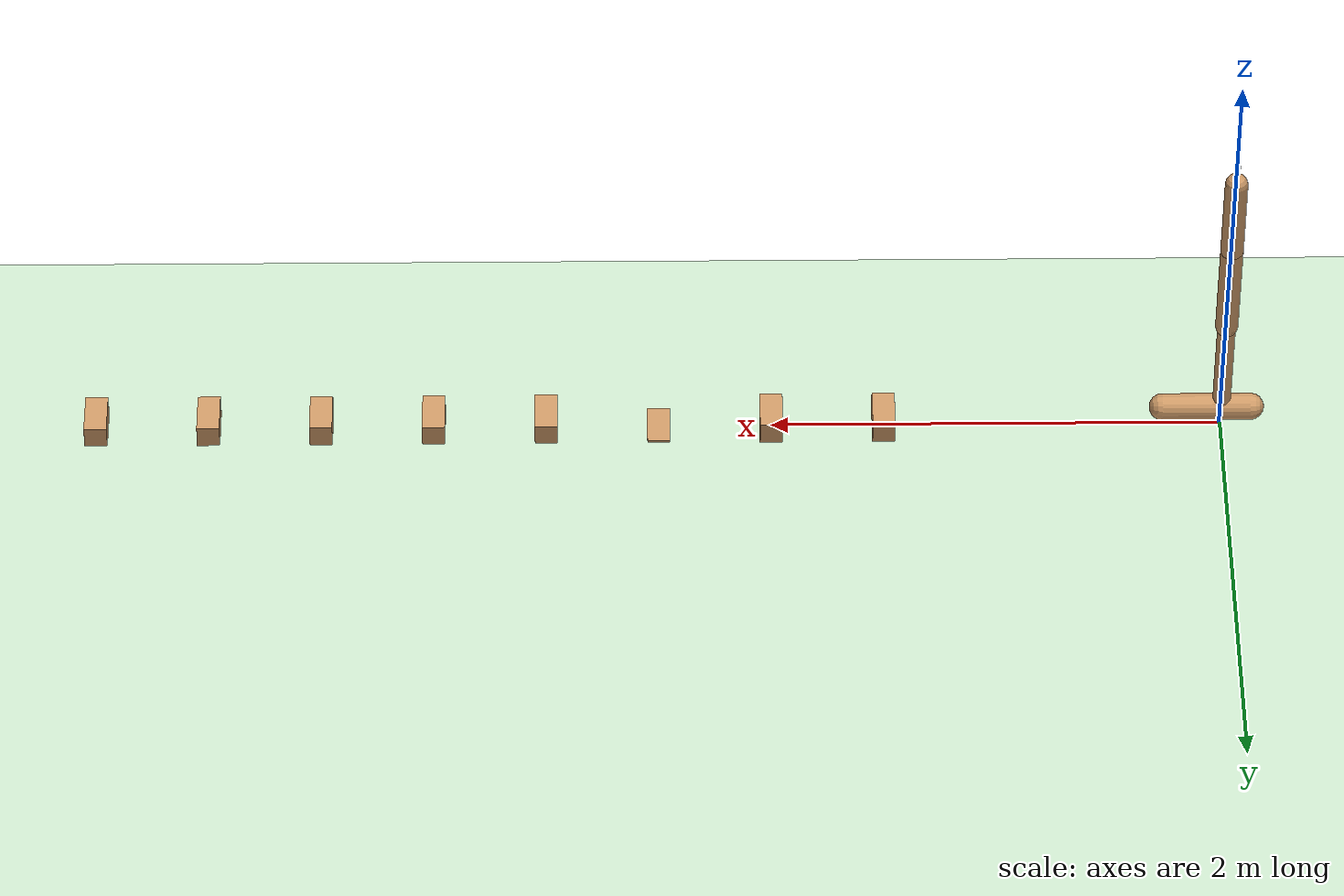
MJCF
<mujoco model="hopper">
  <compiler angle="degree" coordinate="global" inertiafromgeom="true"/>
  <default>
    <joint armature="1" damping="1" limited="true"/>
    <geom conaffinity="1" condim="1" contype="1" margin="0.001" material="geom" rgba="0.8 0.6 .4 1" solimp=".8 .8 .01" solref=".02 1"/>
    <motor ctrllimited="true" ctrlrange="-.4 .4"/>
  </default>
  <option integrator="RK4" timestep="0.002"/>
  <visual>
    <map znear="0.02"/>
  </visual>
  <worldbody>
    <light cutoff="100" diffuse="1 1 1" dir="-0 0 -1.3" directional="true" exponent="1" pos="0 0 1.3" specular=".1 .1 .1"/>
    <geom conaffinity="1" condim="3" name="floor" pos="0 0 0" rgba="0.8 0.9 0.8 1" size="20 20 .125" type="plane" material="MatPlane"/>
			<body name="obsticle_1" pos="2.5 0 0" euler = "0 0 0">
        <geom name="obsticle_1" pos="2.5 0 0" size="0.05 0.1 0.01" type="box"/>
			</body>
			<body name="obsticle_2" pos="3 0 0" euler = "0 0 0">
        <geom name="obsticle_2" pos="3 0 0" size="0.05 0.1 0.1" type="box"/>
			</body>
			<body name="obsticle_3" pos="3.5 0 0" euler = "0 0 0">
        <geom name="obsticle_3" pos="3.5 0 0" size="0.05 0.1 0.1" type="box"/>
			</body>
			<body name="obsticle_4" pos="4 0 0" euler = "0 0 0">
        <geom name="obsticle_4" pos="4 0 0" size="0.05 0.1 0.1" type="box"/>
			</body>
			<body name="obsticle_5" pos="4.5 0 0" euler = "0 0 0">
        <geom name="obsticle_5" pos="4.5 0 0" size="0.05 0.1 0.1" type="box"/>
			</body>
			<body name="obsticle_6" pos="5 0 0" euler = "0 0 0">
        <geom name="obsticle_6" pos="5 0 0" size="0.05 0.1 0.1" type="box"/>
			</body>
			<body name="obsticle_7" pos="1.5 0 0" euler = "0 0 0">
        <geom name="obsticle_7" pos="1.5 0 0" size="0.05 0.1 0.1" type="box"/>
			</body>
			<body name="obsticle_8" pos="2 0 0" euler = "0 0 0">
        <geom name="obsticle_8" pos="2 0 0" size="0.05 0.1 0.1" type="box"/>
			</body>

    <body name="torso" pos="0 0 1.25">
				<site name="range_site_1" pos="0 0 1.55" size="0.01 0.01 0.01" euler="0 110 0" type="cylinder"/>
				<site name="range_site_2" pos="0 0 1.55" size="0.01 0.01 0.01" euler="0 115 0" type="cylinder"/>
				<site name="range_site_3" pos="0 0 1.55" size="0.01 0.01 0.01" euler="0 120 0" type="cylinder"/>
				<site name="range_site_4" pos="0 0 1.55" size="0.01 0.01 0.01" euler="0 125 0" type="cylinder"/>
				<site name="range_site_5" pos="0 0 1.55" size="0.01 0.01 0.01" euler="0 130 0" type="cylinder"/>
				<site name="range_site_6" pos="0 0 1.55" size="0.01 0.01 0.01" euler="0 135 0" type="cylinder"/>
				<site name="range_site_7" pos="0 0 1.55" size="0.01 0.01 0.01" euler="0 140 0" type="cylinder"/>
				<site name="range_site_8" pos="0 0 1.55" size="0.01 0.01 0.01" euler="0 145 0" type="cylinder"/>
				<site name="range_site_9" pos="0 0 1.55" size="0.01 0.01 0.01" euler="0 150 0" type="cylinder"/>
				<site name="range_site_10" pos="0 0 1.55" size="0.01 0.01 0.01" euler="0 155 0" type="cylinder"/>
				<site name="accel_site" pos="0 0 1.35" size="0.01 0.01 0.01" euler="0 0 0" type="cylinder"/>
				<site name="gyro_site" pos="0 0 1.35" size="0.01 0.01 0.01" euler="0 0 0" type="cylinder"/>

      <camera name="track" mode="trackcom" pos="0 -3 1" xyaxes="1 0 0 0 0 1"/>
      <joint armature="0" axis="1 0 0" damping="0" limited="false" name="rootx" pos="0 0 0" stiffness="0" type="slide"/>
      <joint armature="0" axis="0 0 1" damping="0" limited="false" name="rootz" pos="0 0 0" ref="1.25" stiffness="0" type="slide"/>
      <joint armature="0" axis="0 1 0" damping="0" limited="false" name="rooty" pos="0 0 1.25" stiffness="0" type="hinge"/>
      <geom friction="0.9" fromto="0 0 1.45 0 0 1.05" name="torso_geom" size="0.05" type="capsule"/>
      <body name="thigh" pos="0 0 1.05">
        <joint axis="0 -1 0" name="thigh_joint" pos="0 0 1.05" range="-150 0" type="hinge"/>
        <geom friction="0.9" fromto="0 0 1.05 0 0 0.6" name="thigh_geom" size="0.05" type="capsule"/>
        <body name="leg" pos="0 0 0.35">
          <joint axis="0 -1 0" name="leg_joint" pos="0 0 0.6" range="-150 0" type="hinge"/>
          <geom friction="0.9" fromto="0 0 0.6 0 0 0.1" name="leg_geom" size="0.04" type="capsule"/>
          <body name="foot" pos="0.13 0 0">
            <joint axis="0 -1 0" name="foot_joint" pos="0 0 0.1" range="-45 45" type="hinge"/>
            <geom friction="2.0" fromto="-0.13 0 0.1 0.26 0 0.1" name="foot_geom" size="0.06" type="capsule"/>
          </body>
        </body>
      </body>
    </body>
  </worldbody>
  <actuator>
    <motor ctrllimited="true" ctrlrange="-1.0 1.0" gear="200.0" joint="thigh_joint"/>
    <motor ctrllimited="true" ctrlrange="-1.0 1.0" gear="200.0" joint="leg_joint"/>
    <motor ctrllimited="true" ctrlrange="-1.0 1.0" gear="200.0" joint="foot_joint"/>
  </actuator>
    <asset>
        <texture type="skybox" builtin="gradient" rgb1=".4 .5 .6" rgb2="0 0 0"
            width="100" height="100"/>
        <texture builtin="flat" height="1278" mark="cross" markrgb="1 1 1" name="texgeom" random="0.01" rgb1="0.8 0.6 0.4" rgb2="0.8 0.6 0.4" type="cube" width="127"/>
        <texture builtin="checker" height="100" name="texplane" rgb1="0 0 0" rgb2="0.8 0.8 0.8" type="2d" width="100"/>
        <material name="MatPlane" reflectance="0.5" shininess="1" specular="1" texrepeat="60 60" texture="texplane"/>
        <material name="geom" texture="texgeom" texuniform="true"/>
    </asset>
  <sensor>
		<rangefinder name="range_sensor_1" site="range_site_1" cutoff="10" />
		<rangefinder name="range_sensor_2" site="range_site_2" cutoff="10" />
		<rangefinder name="range_sensor_3" site="range_site_3" cutoff="10" />
		<rangefinder name="range_sensor_4" site="range_site_4" cutoff="10" />
		<rangefinder name="range_sensor_5" site="range_site_5" cutoff="10" />
		<rangefinder name="range_sensor_6" site="range_site_6" cutoff="10" />
		<rangefinder name="range_sensor_7" site="range_site_7" cutoff="10" />
		<rangefinder name="range_sensor_8" site="range_site_8" cutoff="10" />
		<rangefinder name="range_sensor_9" site="range_site_9" cutoff="10" />
		<rangefinder name="range_sensor_10" site="range_site_10" cutoff="10" />
  </sensor>
</mujoco>
